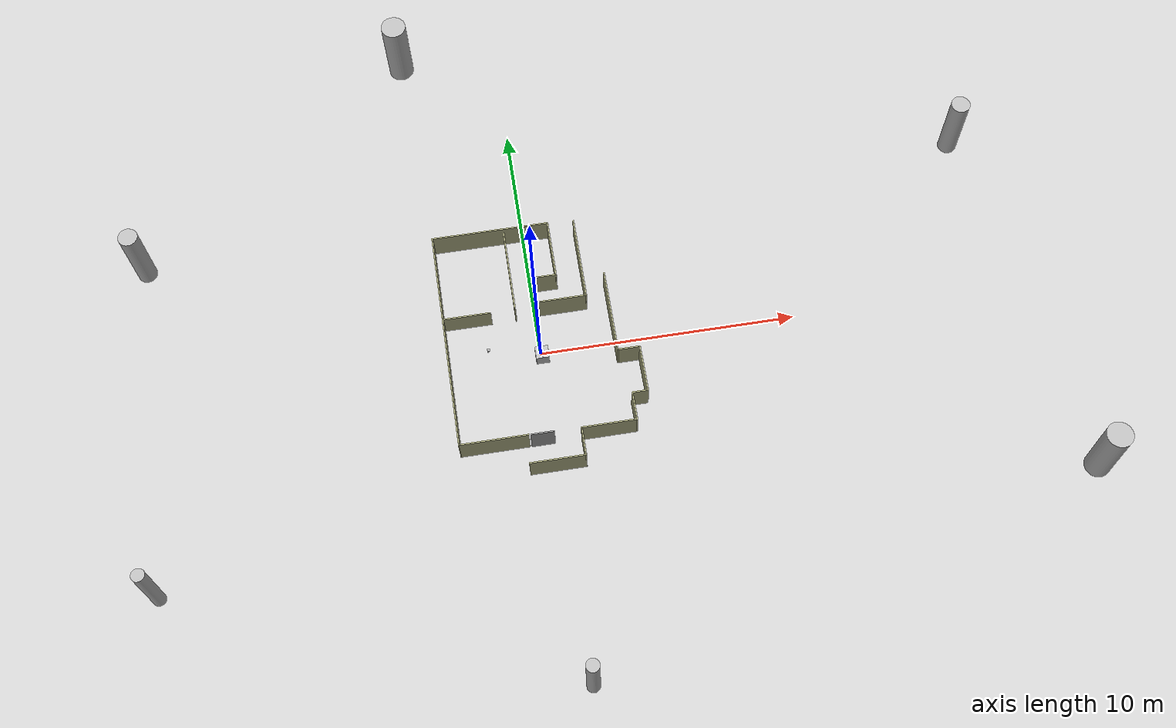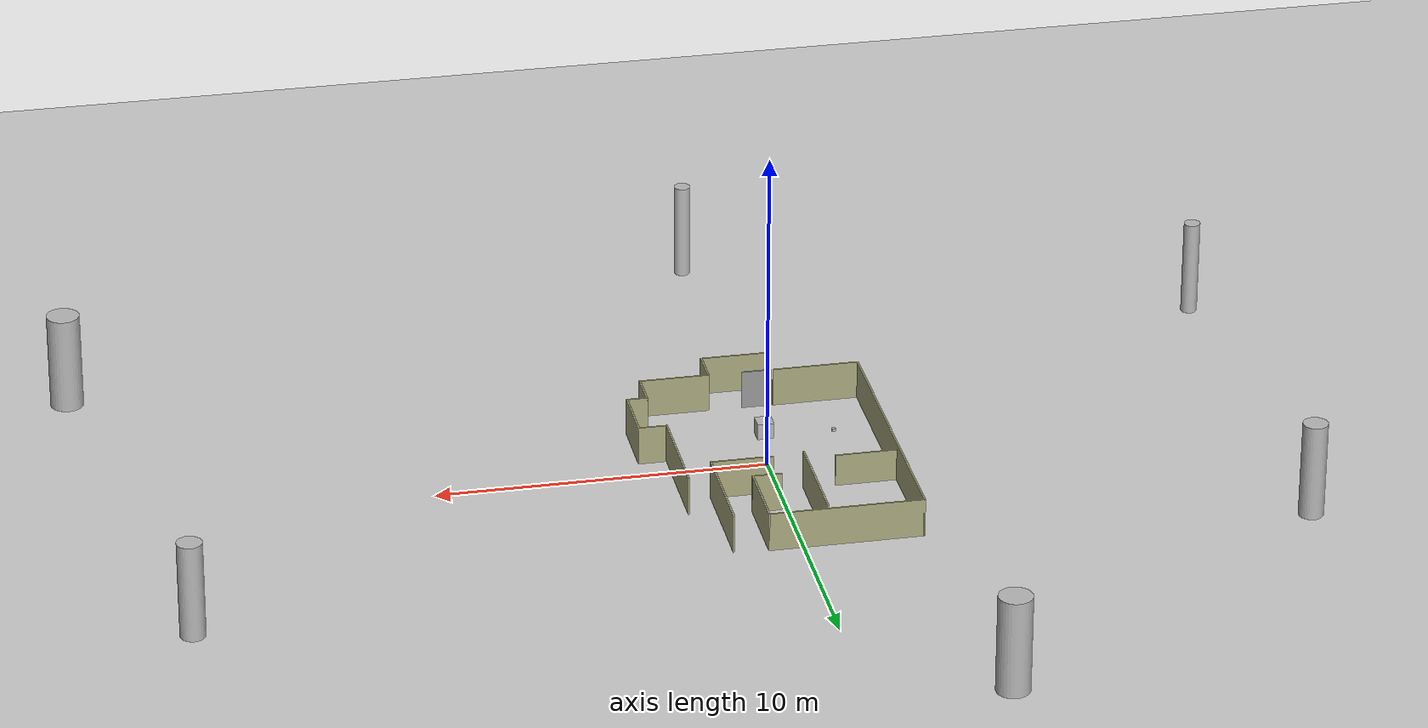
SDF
<?xml version="1.0"?>
<sdf version="1.6">
  <world name="default">
    <!-- GUI -->
    <gui>
      <camera name="gui_camera">
        <pose>-7.6 5.6 5.9 0.0 0.6 -0.85</pose>
      </camera>
    </gui>

    <!-- Lighting -->
    <include>
      <uri>model://sun</uri>
    </include>

    <!-- Ground -->
    <include>
      <uri>model://ground_plane</uri>
    </include>

    <!-- Walls -->
    <include>
      <uri>model://walls</uri>
    </include>

    <!-- Tag -->
    <include>
      <uri>model://tag_box</uri>
      <pose>0.0 -0.5 1.0 0.0 0.0 0.0</pose>
      <static>false</static>
    </include>

    <!-- Cylinder -->
    <include>
      <uri>model://cylinder</uri>
      <pose>0.0 0.5 0.0 0.0 0.0 0.0</pose>
      <static>true</static>
    </include>

    <!-- Depth Camera -->
    <include>
      <uri>model://tag_depth_camera</uri>
      <pose>-2.0 0.0 1.0 0.0 0.0 0.0</pose>
      <static>true</static>
    </include>
  </world>
</sdf>

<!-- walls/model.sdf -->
<sdf version='1.6'>
  <model name='walls'>
    <pose frame=''>0.070483 0.106017 0 0 -0 0</pose>
    <link name='Door_4'>
      <collision name='Door_4_Collision'>
        <geometry>
          <box>
            <size>0.906 0.05 1.2</size>
          </box>
        </geometry>
        <pose frame=''>0 0 0.6 0 -0 0</pose>
      </collision>
      <visual name='Door_4_Visual'>
        <pose frame=''>0 0 0.6 0 -0 0</pose>
        <geometry>
          <box>
            <size>0.906 0.05 1.2</size>
          </box>
        </geometry>
        <material>
          <script>
            <uri>file://media/materials/scripts/gazebo.material</uri>
            <name>Gazebo/Grey</name>
          </script>
        </material>
      </visual>
      <pose frame=''>-0.514741 -3.87011 0 0 0 -0.000969</pose>
    </link>
    <link name='Wall_19'>
      <collision name='Wall_19_Collision'>
        <geometry>
          <box>
            <size>1.9 0.05 1</size>
          </box>
        </geometry>
        <pose frame=''>0 0 0.5 0 -0 0</pose>
      </collision>
      <visual name='Wall_19_Visual'>
        <pose frame=''>0 0 0.5 0 -0 0</pose>
        <geometry>
          <box>
            <size>1.9 0.05 1</size>
          </box>
        </geometry>
        <material>
          <script>
            <uri>file://media/materials/scripts/gazebo.material</uri>
            <name>Gazebo/Grey</name>
          </script>
          <ambient>0.666667 0.666667 0.498039 1</ambient>
        </material>
      </visual>
      <pose frame=''>-2.73248 1.48798 0 0 -0 0</pose>
    </link>
    <link name='Wall_21'>
      <collision name='Wall_21_Collision'>
        <geometry>
          <box>
            <size>2.15 0.05 1.2</size>
          </box>
        </geometry>
        <pose frame=''>0 0 0.6 0 -0 0</pose>
      </collision>
      <visual name='Wall_21_Visual'>
        <pose frame=''>0 0 0.6 0 -0 0</pose>
        <geometry>
          <box>
            <size>2.15 0.05 1.2</size>
          </box>
        </geometry>
        <material>
          <script>
            <uri>file://media/materials/scripts/gazebo.material</uri>
            <name>Gazebo/Grey</name>
          </script>
          <ambient>0.666667 0.666667 0.498039 1</ambient>
        </material>
      </visual>
      <pose frame=''>-0.092483 -4.98802 0 0 -0 0</pose>
    </link>
    <link name='Wall_22'>
      <collision name='Wall_22_Collision'>
        <geometry>
          <box>
            <size>1.15 0.05 1.2</size>
          </box>
        </geometry>
        <pose frame=''>0 0 0.6 0 -0 0</pose>
      </collision>
      <visual name='Wall_22_Visual'>
        <pose frame=''>0 0 0.6 0 -0 0</pose>
        <geometry>
          <box>
            <size>1.15 0.05 1.2</size>
          </box>
        </geometry>
        <material>
          <script>
            <uri>file://media/materials/scripts/gazebo.material</uri>
            <name>Gazebo/Grey</name>
          </script>
          <ambient>0.666667 0.666667 0.498039 1</ambient>
        </material>
      </visual>
      <pose frame=''>0.957517 -4.43802 0 0 -0 1.5708</pose>
    </link>
    <link name='Wall_23'>
      <collision name='Wall_23_Collision'>
        <geometry>
          <box>
            <size>2.15 0.05 1.2</size>
          </box>
        </geometry>
        <pose frame=''>0 0 0.6 0 -0 0</pose>
      </collision>
      <visual name='Wall_23_Visual'>
        <pose frame=''>0 0 0.6 0 -0 0</pose>
        <geometry>
          <box>
            <size>2.15 0.05 1.2</size>
          </box>
        </geometry>
        <material>
          <script>
            <uri>file://media/materials/scripts/gazebo.material</uri>
            <name>Gazebo/Grey</name>
          </script>
          <ambient>0.666667 0.666667 0.498039 1</ambient>
        </material>
      </visual>
      <pose frame=''>2.00752 -3.88802 0 0 -0 0</pose>
    </link>
    <link name='Wall_24'>
      <collision name='Wall_24_Collision'>
        <geometry>
          <box>
            <size>1.15 0.05 1.2</size>
          </box>
        </geometry>
        <pose frame=''>0 0 0.6 0 -0 0</pose>
      </collision>
      <visual name='Wall_24_Visual'>
        <pose frame=''>0 0 0.6 0 -0 0</pose>
        <geometry>
          <box>
            <size>1.15 0.05 1.2</size>
          </box>
        </geometry>
        <material>
          <script>
            <uri>file://media/materials/scripts/gazebo.material</uri>
            <name>Gazebo/Grey</name>
          </script>
          <ambient>0.666667 0.666667 0.498039 1</ambient>
        </material>
      </visual>
      <pose frame=''>3.05752 -3.33802 0 0 -0 1.5708</pose>
    </link>
    <link name='Wall_25'>
      <collision name='Wall_25_Collision'>
        <geometry>
          <box>
            <size>0.65 0.05 1.2</size>
          </box>
        </geometry>
        <pose frame=''>0 0 0.6 0 -0 0</pose>
      </collision>
      <visual name='Wall_25_Visual'>
        <pose frame=''>0 0 0.6 0 -0 0</pose>
        <geometry>
          <box>
            <size>0.65 0.05 1.2</size>
          </box>
        </geometry>
        <material>
          <script>
            <uri>file://media/materials/scripts/gazebo.material</uri>
            <name>Gazebo/Grey</name>
          </script>
          <ambient>0.666667 0.666667 0.498039 1</ambient>
        </material>
      </visual>
      <pose frame=''>3.35752 -2.78802 0 0 -0 0</pose>
    </link>
    <link name='Wall_26'>
      <collision name='Wall_26_Collision'>
        <geometry>
          <box>
            <size>1.9 0.05 1.2</size>
          </box>
        </geometry>
        <pose frame=''>0 0 0.6 0 -0 0</pose>
      </collision>
      <visual name='Wall_26_Visual'>
        <pose frame=''>0 0 0.6 0 -0 0</pose>
        <geometry>
          <box>
            <size>1.9 0.05 1.2</size>
          </box>
        </geometry>
        <material>
          <script>
            <uri>file://media/materials/scripts/gazebo.material</uri>
            <name>Gazebo/Grey</name>
          </script>
          <ambient>0.666667 0.666667 0.498039 1</ambient>
        </material>
      </visual>
      <pose frame=''>3.65752 -1.86302 0 0 -0 1.5708</pose>
    </link>
    <link name='Wall_27'>
      <collision name='Wall_27_Collision'>
        <geometry>
          <box>
            <size>0.9 0.05 1.2</size>
          </box>
        </geometry>
        <pose frame=''>0 0 0.6 0 -0 0</pose>
      </collision>
      <visual name='Wall_27_Visual'>
        <pose frame=''>0 0 0.6 0 -0 0</pose>
        <geometry>
          <box>
            <size>0.9 0.05 1.2</size>
          </box>
        </geometry>
        <material>
          <script>
            <uri>file://media/materials/scripts/gazebo.material</uri>
            <name>Gazebo/Grey</name>
          </script>
          <ambient>0.666667 0.666667 0.498039 1</ambient>
        </material>
      </visual>
      <pose frame=''>3.23252 -0.938017 0 0 -0 3.14159</pose>
    </link>
    <link name='Wall_36'>
      <collision name='Wall_36_Collision'>
        <geometry>
          <box>
            <size>1.9 0.05 1.2</size>
          </box>
        </geometry>
        <pose frame=''>0 0 0.6 0 -0 0</pose>
      </collision>
      <visual name='Wall_36_Visual'>
        <pose frame=''>0 0 0.6 0 -0 0</pose>
        <geometry>
          <box>
            <size>1.9 0.05 1.2</size>
          </box>
        </geometry>
        <material>
          <script>
            <uri>file://media/materials/scripts/gazebo.material</uri>
            <name>Gazebo/Grey</name>
          </script>
          <ambient>0.666667 0.666667 0.498039 1</ambient>
        </material>
      </visual>
      <pose frame=''>1.04652 1.55798 0 0 -0 0</pose>
    </link>
    <link name='Wall_48'>
      <collision name='Wall_48_Collision'>
        <geometry>
          <box>
            <size>8.90001 0.05 1.2</size>
          </box>
        </geometry>
        <pose frame=''>0 0 0.6 0 -0 0</pose>
      </collision>
      <visual name='Wall_48_Visual'>
        <pose frame=''>0 0 0.6 0 -0 0</pose>
        <geometry>
          <box>
            <size>8.90001 0.05 1.2</size>
          </box>
        </geometry>
        <material>
          <script>
            <uri>file://media/materials/scripts/gazebo.material</uri>
            <name>Gazebo/Grey</name>
          </script>
          <ambient>0.666667 0.666667 0.498039 1</ambient>
        </material>
      </visual>
      <pose frame=''>-3.65148 0.562983 0 0 -0 1.57215</pose>
    </link>
    <link name='Wall_49'>
      <collision name='Wall_49_Collision'>
        <geometry>
          <box>
            <size>4.65 0.05 1.2</size>
          </box>
        </geometry>
        <pose frame=''>0 0 0.6 0 -0 0</pose>
      </collision>
      <visual name='Wall_49_Visual'>
        <pose frame=''>0 0 0.6 0 -0 0</pose>
        <geometry>
          <box>
            <size>4.65 0.05 1.2</size>
          </box>
        </geometry>
        <material>
          <script>
            <uri>file://media/materials/scripts/gazebo.material</uri>
            <name>Gazebo/Grey</name>
          </script>
          <ambient>0.666667 0.666667 0.498039 1</ambient>
        </material>
      </visual>
      <pose frame=''>-1.35748 4.98798 0 0 -0 0</pose>
    </link>
    <link name='Wall_50'>
      <collision name='Wall_50_Collision'>
        <geometry>
          <box>
            <size>2.4 0.05 1.2</size>
          </box>
        </geometry>
        <pose frame=''>0 0 0.6 0 -0 0</pose>
      </collision>
      <visual name='Wall_50_Visual'>
        <pose frame=''>0 0 0.6 0 -0 0</pose>
        <geometry>
          <box>
            <size>2.4 0.05 1.2</size>
          </box>
        </geometry>
        <material>
          <script>
            <uri>file://media/materials/scripts/gazebo.material</uri>
            <name>Gazebo/Grey</name>
          </script>
          <ambient>0.666667 0.666667 0.498039 1</ambient>
        </material>
      </visual>
      <pose frame=''>0.942517 3.81298 0 0 0 -1.5708</pose>
    </link>
    <link name='Wall_51'>
      <collision name='Wall_51_Collision'>
        <geometry>
          <box>
            <size>0.9 0.05 1.2</size>
          </box>
        </geometry>
        <pose frame=''>0 0 0.6 0 -0 0</pose>
      </collision>
      <visual name='Wall_51_Visual'>
        <pose frame=''>0 0 0.6 0 -0 0</pose>
        <geometry>
          <box>
            <size>0.9 0.05 1.2</size>
          </box>
        </geometry>
        <material>
          <script>
            <uri>file://media/materials/scripts/gazebo.material</uri>
            <name>Gazebo/Grey</name>
          </script>
          <ambient>0.666667 0.666667 0.498039 1</ambient>
        </material>
      </visual>
      <pose frame=''>0.517517 2.63798 0 0 -0 3.14159</pose>
    </link>
    <link name='Wall_53'>
      <collision name='Wall_53_Collision'>
        <geometry>
          <box>
            <size>3.4 0.05 1.2</size>
          </box>
        </geometry>
        <pose frame=''>0 0 0.6 0 -0 0</pose>
      </collision>
      <visual name='Wall_53_Visual'>
        <pose frame=''>0 0 0.6 0 -0 0</pose>
        <geometry>
          <box>
            <size>3.4 0.05 1.2</size>
          </box>
        </geometry>
        <material>
          <script>
            <uri>file://media/materials/scripts/gazebo.material</uri>
            <name>Gazebo/Grey</name>
          </script>
          <ambient>0.666667 0.666667 0.498039 1</ambient>
        </material>
      </visual>
      <pose frame=''>-0.835483 3.14198 0 0 -0 1.5708</pose>
    </link>
    <link name='Wall_58'>
      <collision name='Wall_58_Collision'>
        <geometry>
          <box>
            <size>3.4 0.05 1.2</size>
          </box>
        </geometry>
        <pose frame=''>0 0 0.6 0 -0 0</pose>
      </collision>
      <visual name='Wall_58_Visual'>
        <pose frame=''>0 0 0.6 0 -0 0</pose>
        <geometry>
          <box>
            <size>3.4 0.05 1.2</size>
          </box>
        </geometry>
        <material>
          <script>
            <uri>file://media/materials/scripts/gazebo.material</uri>
            <name>Gazebo/Grey</name>
          </script>
          <ambient>0.666667 0.666667 0.498039 1</ambient>
        </material>
      </visual>
      <pose frame=''>1.97152 3.23298 0 0 -0 1.5708</pose>
    </link>
    <link name='Wall_61'>
      <collision name='Wall_61_Collision'>
        <geometry>
          <box>
            <size>2.65 0.05 1.2</size>
          </box>
        </geometry>
        <pose frame=''>0 0 0.6 0 -0 0</pose>
      </collision>
      <visual name='Wall_61_Visual'>
        <pose frame=''>0 0 0.6 0 -0 0</pose>
        <geometry>
          <box>
            <size>2.65 0.05 1.2</size>
          </box>
        </geometry>
        <material>
          <script>
            <uri>file://media/materials/scripts/gazebo.material</uri>
            <name>Gazebo/Grey</name>
          </script>
          <ambient>0.666667 0.666667 0.498039 1</ambient>
        </material>
      </visual>
      <pose frame=''>-2.34548 -3.86202 0 0 -0 0</pose>
    </link>
    <link name='Wall_63'>
      <collision name='Wall_63_Collision'>
        <geometry>
          <box>
            <size>3.4 0.05 1.2</size>
          </box>
        </geometry>
        <pose frame=''>0 0 0.6 0 -0 0</pose>
      </collision>
      <visual name='Wall_63_Visual'>
        <pose frame=''>0 0 0.6 0 -0 0</pose>
        <geometry>
          <box>
            <size>3.4 0.05 1.2</size>
          </box>
        </geometry>
        <material>
          <script>
            <uri>file://media/materials/scripts/gazebo.material</uri>
            <name>Gazebo/Grey</name>
          </script>
          <ambient>0.666667 0.666667 0.498039 1</ambient>
        </material>
      </visual>
      <pose frame=''>2.80752 0.736983 0 0 -0 1.5708</pose>
    </link>
    <static>1</static>
  </model>
</sdf>

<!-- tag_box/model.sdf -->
<sdf version="1.5">
  <model name="tag_box">
    <static>true</static>
    <link name="tag">
      <visual name="visual">
        <cast_shadows>false</cast_shadows>
        <geometry>
          <box>
            <size> 0.001 0.5 0.5</size>
          </box>
        </geometry>
        <material>
          <emissive>1 1 1 1</emissive>
          <script>
            <uri>model://tag_box/materials/scripts</uri>
            <uri>model://tag_box/materials/textures</uri>
            <name>TagBox</name>
          </script>
        </material>
      </visual>
    </link>
    <link name="box">
      <collision name="collision">
        <geometry>
          <box>
            <size> 0.5 0.5 0.5</size>
          </box>
        </geometry>
      </collision>
      <visual name="visual">
        <cast_shadows>false</cast_shadows>
        <geometry>
          <box>
            <size> 0.5 0.5 0.5</size>
          </box>
        </geometry>
        <material>
          <emissive>1 1 1 0</emissive>
        </material>
      </visual>
    </link>
    <joint name="joint" type="fixed">
      <pose></pose>
      <parent link="box"/>
      <child link="tag"/>
    </joint>
    <plugin name="tag_box_motion" filename="libtag_box_plugin.so"></plugin>
  </model>
</sdf>

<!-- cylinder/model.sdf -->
<sdf version="1.5">
    <model name="cylinder">
        <static>true</static>
        <link name="link">
            <collision name="collision1">
                <pose>20 -8.4 0 0 0 0</pose>
                <geometry>
                    <mesh>
                        <uri>model://cylinder/meshes/cylinder_1.stl</uri>
                    </mesh>
                </geometry>
            </collision>
            <visual name="visual1">

              <pose>20 -8.4 0 0 0 0</pose>
              <geometry>
              <mesh>
                 <uri>model://cylinder/meshes/cylinder_1.dae</uri>
              </mesh>
              </geometry>

              <material>
                  <script>
                      <uri>model://cylinder/materials/scripts</uri>
                      <uri>model://cylinder/materials/textures</uri>
                      <name>cylinderMat/Diffuse</name>
                  </script>
              </material>
             </visual>

             <collision name="collision2">
                <pose>-4 13.7 0 0 0 0</pose>
                <geometry>
                    <mesh>
                        <uri>model://cylinder/meshes/cylinder_1.stl</uri>
                    </mesh>
                </geometry>
            </collision>
            <visual name="visual2">

              <pose>-4 13.7 0 0 0 0</pose>
              <geometry>
              <mesh>
                 <uri>model://cylinder/meshes/cylinder_1.dae</uri>
              </mesh>
              </geometry>

              <material>
                  <script>
                      <uri>model://cylinder/materials/scripts</uri>
                      <uri>model://cylinder/materials/textures</uri>
                      <name>cylinderMat/Diffuse</name>
                  </script>
              </material>
             </visual>

             <collision name="collision3">
                <pose>-15 -8 0 0 0 0</pose>
                <geometry>
                    <mesh>
                        <uri>model://cylinder/meshes/cylinder_0_5.stl</uri>
                    </mesh>
                </geometry>
            </collision>
            <visual name="visual3">

              <pose>-15 -8 0 0 0 0</pose>
              <geometry>
              <mesh>
                 <uri>model://cylinder/meshes/cylinder_0_5.dae</uri>
              </mesh>
              </geometry>

              <material>
                  <script>
                      <uri>model://cylinder/materials/scripts</uri>
                      <uri>model://cylinder/materials/textures</uri>
                      <name>cylinderMat/Diffuse</name>
                  </script>
              </material>
             </visual>

             <collision name="collision4">
                <pose>0 -13.6 0 0 0 0</pose>
                <geometry>
                    <mesh>
                        <uri>model://cylinder/meshes/cylinder_0_5.stl</uri>
                    </mesh>
                </geometry>
            </collision>
            <visual name="visual4">

              <pose>0 -13.6 0 0 0 0</pose>
              <geometry>
              <mesh>
                 <uri>model://cylinder/meshes/cylinder_0_5.dae</uri>
              </mesh>
              </geometry>

              <material>
                  <script>
                      <uri>model://cylinder/materials/scripts</uri>
                      <uri>model://cylinder/materials/textures</uri>
                      <name>cylinderMat/Diffuse</name>
                  </script>
              </material>
             </visual>

             <collision name="collision5">
                <pose>18 6.3 0 0 0 0</pose>
                <geometry>
                    <mesh>
                        <uri>model://cylinder/meshes/cylinder_0_75.stl</uri>
                    </mesh>
                </geometry>
            </collision>
            <visual name="visual5">

              <pose>18 6.3 0 0 0 0</pose>
              <geometry>
              <mesh>
                 <uri>model://cylinder/meshes/cylinder_0_75.dae</uri>
              </mesh>
              </geometry>

              <material>
                  <script>
                      <uri>model://cylinder/materials/scripts</uri>
                      <uri>model://cylinder/materials/textures</uri>
                      <name>cylinderMat/Diffuse</name>
                  </script>
              </material>
             </visual>

             <collision name="collision6">
                <pose>-15 5.5 0 0 0 0</pose>
                <geometry>
                    <mesh>
                        <uri>model://cylinder/meshes/cylinder_0_75.stl</uri>
                    </mesh>
                </geometry>
            </collision>
            <visual name="visual6">

              <pose>-15 5.5 0 0 0 0</pose>
              <geometry>
              <mesh>
                 <uri>model://cylinder/meshes/cylinder_0_75.dae</uri>
              </mesh>
              </geometry>

              <material>
                  <script>
                      <uri>model://cylinder/materials/scripts</uri>
                      <uri>model://cylinder/materials/textures</uri>
                      <name>cylinderMat/Diffuse</name>
                  </script>
              </material>
             </visual>

        </link>
    </model>
</sdf>

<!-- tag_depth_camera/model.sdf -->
<sdf version="1.5">
  <model name="tag_depth_camera">

    <link name="camera_link">

      <visual name="visual">
        <geometry>
          <box>
            <size>0.1 0.1 0.1</size>
          </box>
        </geometry>
      </visual>

      <inertial>
        <mass>0.1</mass>
      </inertial>

      <sensor name="tag_depth_camera" type="depth">

        <camera name="__default__">
          <horizontal_fov>1.047</horizontal_fov>
          <image>
            <width>640</width>
            <height>480</height>
            <format>R8G8B8</format>
          </image>
          <clip>
            <near>0.1</near>
            <far>100</far>
          </clip>
          <noise>
            <type>gaussian</type>
            <mean>0.0</mean>
            <stddev>0.007</stddev>
          </noise>
        </camera>

        <plugin name="camera_plugin" filename="libgazebo_ros_camera.so">
          <baseline>0.2</baseline>
          <alwaysOn>true</alwaysOn>
          <updateRate>0.0</updateRate>
          <cameraName>depth_camera</cameraName>
          <imageTopicName>image_raw</imageTopicName>
          <cameraInfoTopicName>camera_info</cameraInfoTopicName>
          <frameName>camera_link</frameName>
          <pointCloudTopicName>/camera/depth/points</pointCloudTopicName>
          <pointCloudCutoff>10</pointCloudCutoff>
          <pointCloudCutoffMax>20</pointCloudCutoffMax>
          <distortionK1>0.0</distortionK1>
          <distortionK2>0.0</distortionK2>
          <distortionK3>0.0</distortionK3>
          <distortionT1>0.0</distortionT1>
          <distortionT2>0.0</distortionT2>
          <CxPrime>0</CxPrime>
          <Cx>0</Cx>
          <Cy>0</Cy>
          <focalLength>0</focalLength>
          <hackBaseline>0</hackBaseline>
        </plugin>

        <always_on>1</always_on>
        <update_rate>60</update_rate>
        <visualize>true</visualize>

      </sensor>

    </link>

  </model>
</sdf>
